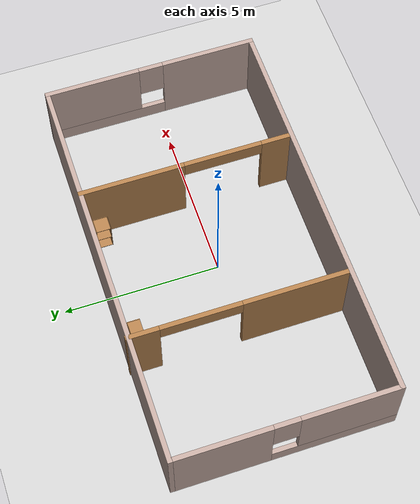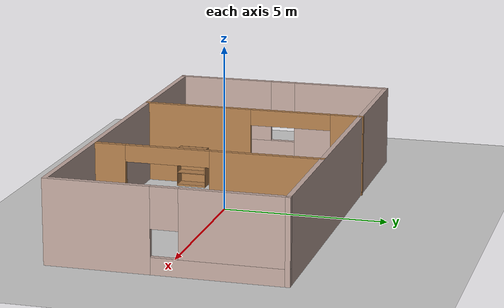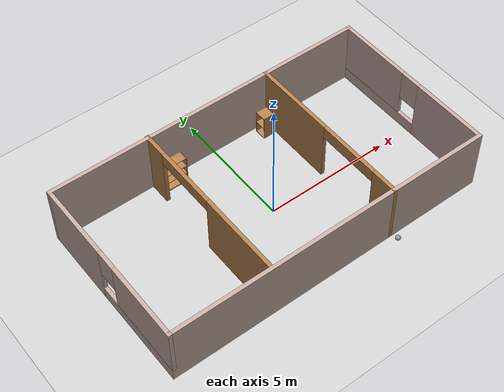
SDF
<sdf version="1.7">
 <world name="default">
  <light name="sun" type="directional">
   <pose>0 0 10 0 -0 0</pose>
   <diffuse>0.8 0.8 0.8 1</diffuse>
   <specular>0.2 0.2 0.2 1</specular>
   <attenuation>
    <range>1000</range>
    <constant>0.9</constant>
    <linear>0.01</linear>
    <quadratic>0.001</quadratic>
   </attenuation>
   <direction>-0.5 0.1 -0.9</direction>
   <spot><inner_angle>0</inner_angle><outer_angle>0</outer_angle><falloff>0</falloff></spot>
  </light>
  <model name="ground_plane">
   <static>1</static>
   <link name="link">
    <collision name="collision">
     <geometry><plane><normal>0 0 1</normal><size>100 100</size></plane></geometry>
     <surface>
      <contact><collide_bitmask>65535</collide_bitmask></contact>
      <friction><ode><mu>100</mu><mu2>50</mu2></ode></friction>
     </surface>
    </collision>
    <visual name="visual">
     <cast_shadows>0</cast_shadows>
     <geometry><plane><normal>0 0 1</normal><size>100 100</size></plane></geometry>
     <material>
      <script><uri>file://media/materials/scripts/gazebo.material</uri><name>Gazebo/Grey</name></script>
     </material>
    </visual>
   </link>
  </model>
  <gravity>0 0 -9.8</gravity>
  <magnetic_field>6e-06 2.3e-05 -4.2e-05</magnetic_field>
  <atmosphere type="adiabatic"/>
  <physics type="ode">
   <max_step_size>0.001</max_step_size>
   <real_time_factor>1</real_time_factor>
   <real_time_update_rate>1000</real_time_update_rate>
  </physics>
  <scene><ambient>0.4 0.4 0.4 1</ambient><background>0.7 0.7 0.7 1</background><shadows>1</shadows></scene>
  <spherical_coordinates>
   <surface_model>EARTH_WGS84</surface_model>
   <latitude_deg>0</latitude_deg>
   <longitude_deg>0</longitude_deg>
   <elevation>0</elevation>
   <heading_deg>0</heading_deg>
  </spherical_coordinates>
  <model name="go-chase">
   <pose>-0.062706 0.17599 0 0 -0 0</pose>
   <link name="Wall_0">
    <collision name="Wall_0_Collision">
     <geometry><box><size>13 0.15 2.5</size></box></geometry>
     <pose>0 0 1.25 0 -0 0</pose>
    </collision>
    <visual name="Wall_0_Visual">
     <pose>0 0 1.25 0 -0 0</pose>
     <geometry><box><size>13 0.15 2.5</size></box></geometry>
     <material>
      <script><uri>file://media/materials/scripts/gazebo.material</uri><name>Gazebo/Grey</name></script>
      <ambient>0.760784 0.662745 0.627451 1</ambient>
     </material>
     <meta><layer>0</layer></meta>
    </visual>
    <pose>-0 -3.44017 0 0 -0 0</pose>
   </link>
   <link name="Wall_14">
    <pose>2.53405 -0.01542 0 0 -0 -1.5708</pose>
    <visual name="Wall_14_Visual_0">
     <pose>-1.80446 0 1.25 0 -0 0</pose>
     <geometry><box><size>3.39109 0.15 2.5</size></box></geometry>
     <material>
      <script><uri>file://media/materials/scripts/gazebo.material</uri><name>Gazebo/Wood</name></script>
      <ambient>1 1 1 1</ambient>
     </material>
     <meta><layer>0</layer></meta>
    </visual>
    <collision name="Wall_14_Collision_0">
     <geometry><box><size>3.39109 0.15 2.5</size></box></geometry>
     <pose>-1.80446 0 1.25 0 -0 0</pose>
    </collision>
    <visual name="Wall_14_Visual_1">
     <pose>2.95888 0 1.25 0 -0 0</pose>
     <geometry><box><size>1.08225 0.15 2.5</size></box></geometry>
     <material>
      <script><uri>file://media/materials/scripts/gazebo.material</uri><name>Gazebo/Wood</name></script>
      <ambient>1 1 1 1</ambient>
     </material>
     <meta><layer>0</layer></meta>
    </visual>
    <collision name="Wall_14_Collision_1">
     <geometry><box><size>1.08225 0.15 2.5</size></box></geometry>
     <pose>2.95888 0 1.25 0 -0 0</pose>
    </collision>
    <visual name="Wall_14_Visual_2">
     <pose>1.15442 0 2.25 0 -0 0</pose>
     <geometry><box><size>2.52667 0.15 0.5</size></box></geometry>
     <material>
      <script><uri>file://media/materials/scripts/gazebo.material</uri><name>Gazebo/Wood</name></script>
      <ambient>1 1 1 1</ambient>
     </material>
     <meta><layer>0</layer></meta>
    </visual>
    <collision name="Wall_14_Collision_2">
     <geometry><box><size>2.52667 0.15 0.5</size></box></geometry>
     <pose>1.15442 0 2.25 0 -0 0</pose>
    </collision>
   </link>
   <link name="Wall_16">
    <pose>-2.53927 0.01542 0 0 -0 -1.5708</pose>
    <visual name="Wall_16_Visual_0">
     <pose>-2.9857 0 1.25 0 -0 0</pose>
     <geometry><box><size>1.02859 0.15 2.5</size></box></geometry>
     <material>
      <script><uri>file://media/materials/scripts/gazebo.material</uri><name>Gazebo/Wood</name></script>
      <ambient>1 1 1 1</ambient>
     </material>
     <meta><layer>0</layer></meta>
    </visual>
    <collision name="Wall_16_Collision_0">
     <geometry><box><size>1.02859 0.15 2.5</size></box></geometry>
     <pose>-2.9857 0 1.25 0 -0 0</pose>
    </collision>
    <visual name="Wall_16_Visual_1">
     <pose>1.7843 0 1.25 0 -0 0</pose>
     <geometry><box><size>3.4314 0.15 2.5</size></box></geometry>
     <material>
      <script><uri>file://media/materials/scripts/gazebo.material</uri><name>Gazebo/Wood</name></script>
      <ambient>1 1 1 1</ambient>
     </material>
     <meta><layer>0</layer></meta>
    </visual>
    <collision name="Wall_16_Collision_1">
     <geometry><box><size>3.4314 0.15 2.5</size></box></geometry>
     <pose>1.7843 0 1.25 0 -0 0</pose>
    </collision>
    <visual name="Wall_16_Visual_2">
     <pose>-1.20141 0 2.25 0 -0 0</pose>
     <geometry><box><size>2.54 0.15 0.5</size></box></geometry>
     <material>
      <script><uri>file://media/materials/scripts/gazebo.material</uri><name>Gazebo/Wood</name></script>
      <ambient>1 1 1 1</ambient>
     </material>
     <meta><layer>0</layer></meta>
    </visual>
    <collision name="Wall_16_Collision_2">
     <geometry><box><size>2.54 0.15 0.5</size></box></geometry>
     <pose>-1.20141 0 2.25 0 -0 0</pose>
    </collision>
   </link>
   <link name="Wall_3">
    <pose>6.425 -0.015166 0 0 -0 1.5708</pose>
    <visual name="Wall_3_Visual_0">
     <pose>-1.954 0 1.25 0 -0 0</pose>
     <geometry><box><size>3.09199 0.15 2.5</size></box></geometry>
     <material>
      <script><uri>file://media/materials/scripts/gazebo.material</uri><name>Gazebo/Grey</name></script>
      <ambient>0.760784 0.662745 0.627451 1</ambient>
     </material>
     <meta><layer>0</layer></meta>
    </visual>
    <collision name="Wall_3_Collision_0">
     <geometry><box><size>3.09199 0.15 2.5</size></box></geometry>
     <pose>-1.954 0 1.25 0 -0 0</pose>
    </collision>
    <visual name="Wall_3_Visual_1">
     <pose>1.546 0 0.25 0 -0 0</pose>
     <geometry><box><size>3.90801 0.15 0.5</size></box></geometry>
     <material>
      <script><uri>file://media/materials/scripts/gazebo.material</uri><name>Gazebo/Grey</name></script>
      <ambient>0.760784 0.662745 0.627451 1</ambient>
     </material>
     <meta><layer>0</layer></meta>
    </visual>
    <collision name="Wall_3_Collision_1">
     <geometry><box><size>3.90801 0.15 0.5</size></box></geometry>
     <pose>1.546 0 0.25 0 -0 0</pose>
    </collision>
    <visual name="Wall_3_Visual_2">
     <pose>1.946 0 1.5 0 -0 0</pose>
     <geometry><box><size>3.10801 0.15 2</size></box></geometry>
     <material>
      <script><uri>file://media/materials/scripts/gazebo.material</uri><name>Gazebo/Grey</name></script>
      <ambient>0.760784 0.662745 0.627451 1</ambient>
     </material>
     <meta><layer>0</layer></meta>
    </visual>
    <collision name="Wall_3_Collision_2">
     <geometry><box><size>3.10801 0.15 2</size></box></geometry>
     <pose>1.946 0 1.5 0 -0 0</pose>
    </collision>
    <visual name="Wall_3_Visual_3">
     <pose>-0.008009 0 1.9 0 -0 0</pose>
     <geometry><box><size>0.8 0.15 1.2</size></box></geometry>
     <material>
      <script><uri>file://media/materials/scripts/gazebo.material</uri><name>Gazebo/Grey</name></script>
      <ambient>0.760784 0.662745 0.627451 1</ambient>
     </material>
     <meta><layer>0</layer></meta>
    </visual>
    <collision name="Wall_3_Collision_3">
     <geometry><box><size>0.8 0.15 1.2</size></box></geometry>
     <pose>-0.008009 0 1.9 0 -0 0</pose>
    </collision>
   </link>
   <link name="Wall_4">
    <collision name="Wall_4_Collision">
     <geometry><box><size>13 0.15 2.5</size></box></geometry>
     <pose>0 0 1.25 0 -0 0</pose>
    </collision>
    <visual name="Wall_4_Visual">
     <pose>0 0 1.25 0 -0 0</pose>
     <geometry><box><size>13 0.15 2.5</size></box></geometry>
     <material>
      <script><uri>file://media/materials/scripts/gazebo.material</uri><name>Gazebo/Grey</name></script>
      <ambient>0.760784 0.662745 0.627451 1</ambient>
     </material>
     <meta><layer>0</layer></meta>
    </visual>
    <pose>-0 3.40983 0 0 -0 3.14159</pose>
   </link>
   <link name="Wall_5">
    <pose>-6.425 -0.015166 0 0 -0 -1.5708</pose>
    <visual name="Wall_5_Visual_0">
     <pose>-1.95266 0 1.25 0 -0 0</pose>
     <geometry><box><size>3.09468 0.15 2.5</size></box></geometry>
     <material>
      <script><uri>file://media/materials/scripts/gazebo.material</uri><name>Gazebo/Grey</name></script>
      <ambient>0.760784 0.662745 0.627451 1</ambient>
     </material>
     <meta><layer>0</layer></meta>
    </visual>
    <collision name="Wall_5_Collision_0">
     <geometry><box><size>3.09468 0.15 2.5</size></box></geometry>
     <pose>-1.95266 0 1.25 0 -0 0</pose>
    </collision>
    <visual name="Wall_5_Visual_1">
     <pose>1.54734 0 0.25 0 -0 0</pose>
     <geometry><box><size>3.90532 0.15 0.5</size></box></geometry>
     <material>
      <script><uri>file://media/materials/scripts/gazebo.material</uri><name>Gazebo/Grey</name></script>
      <ambient>0.760784 0.662745 0.627451 1</ambient>
     </material>
     <meta><layer>0</layer></meta>
    </visual>
    <collision name="Wall_5_Collision_1">
     <geometry><box><size>3.90532 0.15 0.5</size></box></geometry>
     <pose>1.54734 0 0.25 0 -0 0</pose>
    </collision>
    <visual name="Wall_5_Visual_2">
     <pose>1.94734 0 1.5 0 -0 0</pose>
     <geometry><box><size>3.10533 0.15 2</size></box></geometry>
     <material>
      <script><uri>file://media/materials/scripts/gazebo.material</uri><name>Gazebo/Grey</name></script>
      <ambient>0.760784 0.662745 0.627451 1</ambient>
     </material>
     <meta><layer>0</layer></meta>
    </visual>
    <collision name="Wall_5_Collision_2">
     <geometry><box><size>3.10533 0.15 2</size></box></geometry>
     <pose>1.94734 0 1.5 0 -0 0</pose>
    </collision>
    <visual name="Wall_5_Visual_3">
     <pose>-0.005325 0 1.9 0 -0 0</pose>
     <geometry><box><size>0.8 0.15 1.2</size></box></geometry>
     <material>
      <script><uri>file://media/materials/scripts/gazebo.material</uri><name>Gazebo/Grey</name></script>
      <ambient>0.760784 0.662745 0.627451 1</ambient>
     </material>
     <meta><layer>0</layer></meta>
    </visual>
    <collision name="Wall_5_Collision_3">
     <geometry><box><size>0.8 0.15 1.2</size></box></geometry>
     <pose>-0.005325 0 1.9 0 -0 0</pose>
    </collision>
   </link>
   <static>1</static>
  </model>
  <model name="bookshelf">
   <static>1</static>
   <link name="link">
    <inertial><mass>1</mass></inertial>
    <collision name="back">
     <pose>0 0.005 0.6 0 -0 0</pose>
     <geometry><box><size>0.9 0.01 1.2</size></box></geometry>
    </collision>
    <visual name="visual1">
     <pose>0 0.005 0.6 0 -0 0</pose>
     <geometry><box><size>0.9 0.01 1.2</size></box></geometry>
     <material>
      <script><uri>file://media/materials/scripts/gazebo.material</uri><name>Gazebo/Wood</name></script>
     </material>
    </visual>
    <collision name="left_side">
     <pose>0.45 -0.195 0.6 0 -0 0</pose>
     <geometry><box><size>0.02 0.4 1.2</size></box></geometry>
    </collision>
    <visual name="visual2">
     <pose>0.45 -0.195 0.6 0 -0 0</pose>
     <geometry><box><size>0.02 0.4 1.2</size></box></geometry>
     <material>
      <script><uri>file://media/materials/scripts/gazebo.material</uri><name>Gazebo/Wood</name></script>
     </material>
    </visual>
    <collision name="right_side">
     <pose>-0.45 -0.195 0.6 0 -0 0</pose>
     <geometry><box><size>0.02 0.4 1.2</size></box></geometry>
    </collision>
    <visual name="visual3">
     <pose>-0.45 -0.195 0.6 0 -0 0</pose>
     <geometry><box><size>0.02 0.4 1.2</size></box></geometry>
     <material>
      <script><uri>file://media/materials/scripts/gazebo.material</uri><name>Gazebo/Wood</name></script>
     </material>
    </visual>
    <collision name="bottom">
     <pose>0 -0.195 0.03 0 -0 0</pose>
     <geometry><box><size>0.88 0.4 0.06</size></box></geometry>
    </collision>
    <visual name="visual4">
     <pose>0 -0.195 0.03 0 -0 0</pose>
     <geometry><box><size>0.88 0.4 0.06</size></box></geometry>
     <material>
      <script><uri>file://media/materials/scripts/gazebo.material</uri><name>Gazebo/Wood</name></script>
     </material>
    </visual>
    <collision name="top">
     <pose>0 -0.195 1.19 0 -0 0</pose>
     <geometry><box><size>0.88 0.4 0.02</size></box></geometry>
    </collision>
    <visual name="visual5">
     <pose>0 -0.195 1.19 0 -0 0</pose>
     <geometry><box><size>0.88 0.4 0.02</size></box></geometry>
     <material>
      <script><uri>file://media/materials/scripts/gazebo.material</uri><name>Gazebo/Wood</name></script>
     </material>
    </visual>
    <collision name="low_shelf">
     <pose>0 -0.195 0.43 0 -0 0</pose>
     <geometry><box><size>0.88 0.4 0.02</size></box></geometry>
    </collision>
    <visual name="visual6">
     <pose>0 -0.195 0.43 0 -0 0</pose>
     <geometry><box><size>0.88 0.4 0.02</size></box></geometry>
     <material>
      <script><uri>file://media/materials/scripts/gazebo.material</uri><name>Gazebo/Wood</name></script>
     </material>
    </visual>
    <collision name="high_shelf">
     <pose>0 -0.195 0.8 0 -0 0</pose>
     <geometry><box><size>0.88 0.4 0.02</size></box></geometry>
    </collision>
    <visual name="visual7">
     <pose>0 -0.195 0.8 0 -0 0</pose>
     <geometry><box><size>0.88 0.4 0.02</size></box></geometry>
     <material>
      <script><uri>file://media/materials/scripts/gazebo.material</uri><name>Gazebo/Wood</name></script>
     </material>
    </visual>
   </link>
   <pose>-1.97681 3.38182 0 0 -0 0</pose>
  </model>
  <model name="bookshelf_0">
   <static>1</static>
   <link name="link">
    <inertial><mass>1</mass></inertial>
    <collision name="back">
     <pose>0 0.005 0.6 0 -0 0</pose>
     <geometry><box><size>0.9 0.01 1.2</size></box></geometry>
    </collision>
    <visual name="visual1">
     <pose>0 0.005 0.6 0 -0 0</pose>
     <geometry><box><size>0.9 0.01 1.2</size></box></geometry>
     <material>
      <script><uri>file://media/materials/scripts/gazebo.material</uri><name>Gazebo/Wood</name></script>
     </material>
    </visual>
    <collision name="left_side">
     <pose>0.45 -0.195 0.6 0 -0 0</pose>
     <geometry><box><size>0.02 0.4 1.2</size></box></geometry>
    </collision>
    <visual name="visual2">
     <pose>0.45 -0.195 0.6 0 -0 0</pose>
     <geometry><box><size>0.02 0.4 1.2</size></box></geometry>
     <material>
      <script><uri>file://media/materials/scripts/gazebo.material</uri><name>Gazebo/Wood</name></script>
     </material>
    </visual>
    <collision name="right_side">
     <pose>-0.45 -0.195 0.6 0 -0 0</pose>
     <geometry><box><size>0.02 0.4 1.2</size></box></geometry>
    </collision>
    <visual name="visual3">
     <pose>-0.45 -0.195 0.6 0 -0 0</pose>
     <geometry><box><size>0.02 0.4 1.2</size></box></geometry>
     <material>
      <script><uri>file://media/materials/scripts/gazebo.material</uri><name>Gazebo/Wood</name></script>
     </material>
    </visual>
    <collision name="bottom">
     <pose>0 -0.195 0.03 0 -0 0</pose>
     <geometry><box><size>0.88 0.4 0.06</size></box></geometry>
    </collision>
    <visual name="visual4">
     <pose>0 -0.195 0.03 0 -0 0</pose>
     <geometry><box><size>0.88 0.4 0.06</size></box></geometry>
     <material>
      <script><uri>file://media/materials/scripts/gazebo.material</uri><name>Gazebo/Wood</name></script>
     </material>
    </visual>
    <collision name="top">
     <pose>0 -0.195 1.19 0 -0 0</pose>
     <geometry><box><size>0.88 0.4 0.02</size></box></geometry>
    </collision>
    <visual name="visual5">
     <pose>0 -0.195 1.19 0 -0 0</pose>
     <geometry><box><size>0.88 0.4 0.02</size></box></geometry>
     <material>
      <script><uri>file://media/materials/scripts/gazebo.material</uri><name>Gazebo/Wood</name></script>
     </material>
    </visual>
    <collision name="low_shelf">
     <pose>0 -0.195 0.43 0 -0 0</pose>
     <geometry><box><size>0.88 0.4 0.02</size></box></geometry>
    </collision>
    <visual name="visual6">
     <pose>0 -0.195 0.43 0 -0 0</pose>
     <geometry><box><size>0.88 0.4 0.02</size></box></geometry>
     <material>
      <script><uri>file://media/materials/scripts/gazebo.material</uri><name>Gazebo/Wood</name></script>
     </material>
    </visual>
    <collision name="high_shelf">
     <pose>0 -0.195 0.8 0 -0 0</pose>
     <geometry><box><size>0.88 0.4 0.02</size></box></geometry>
    </collision>
    <visual name="visual7">
     <pose>0 -0.195 0.8 0 -0 0</pose>
     <geometry><box><size>0.88 0.4 0.02</size></box></geometry>
     <material>
      <script><uri>file://media/materials/scripts/gazebo.material</uri><name>Gazebo/Wood</name></script>
     </material>
    </visual>
   </link>
   <pose>-2.43654 -1.67884 0 0 -0 1.56521</pose>
  </model>
  <model name="cabinet">
   <static>1</static>
   <link name="cabinet_bottom_plate">
    <inertial>
     <pose>0 0 -1 0 -0 0</pose>
     <inertia><ixx>2.05</ixx><ixy>0</ixy><ixz>0</ixz><iyy>2.05</iyy><iyz>0</iyz><izz>2.05</izz></inertia>
     <mass>25</mass>
    </inertial>
    <collision name="cabinet_bottom_plate_geom">
     <pose>0 0 0.01 0 -0 0</pose>
     <geometry><box><size>0.45 0.45 0.02</size></box></geometry>
    </collision>
    <visual name="cabinet_bottom_plate_geom_visual">
     <pose>0 0 0.01 0 -0 0</pose>
     <geometry><box><size>0.45 0.45 0.02</size></box></geometry>
     <material>
      <script><uri>file://media/materials/scripts/gazebo.material</uri><name>Gazebo/Wood</name></script>
     </material>
    </visual>
    <collision name="cabinet_bottom_plate_geom_cabinet_back_plate">
     <pose>0.235 0 0.51 0 -0 0</pose>
     <geometry><box><size>0.02 0.45 1.02</size></box></geometry>
    </collision>
    <visual name="cabinet_bottom_plate_geom_cabinet_back_plate_visual">
     <pose>0.235 0 0.51 0 -0 0</pose>
     <geometry><box><size>0.02 0.45 1.02</size></box></geometry>
     <material>
      <script><uri>file://media/materials/scripts/gazebo.material</uri><name>Gazebo/Wood</name></script>
     </material>
    </visual>
    <collision name="cabinet_bottom_plate_geom_cabinet_left_plate">
     <pose>0 0.235 0.51 0 -0 0</pose>
     <geometry><box><size>0.45 0.02 1.02</size></box></geometry>
    </collision>
    <visual name="cabinet_bottom_plate_geom_cabinet_left_plate_visual">
     <pose>0 0.235 0.51 0 -0 0</pose>
     <geometry><box><size>0.45 0.02 1.02</size></box></geometry>
     <material>
      <script><uri>file://media/materials/scripts/gazebo.material</uri><name>Gazebo/Wood</name></script>
     </material>
    </visual>
    <collision name="cabinet_bottom_plate_geom_cabinet_middle_plate">
     <pose>0 0 0.51 0 -0 0</pose>
     <geometry><box><size>0.45 0.45 0.02</size></box></geometry>
    </collision>
    <visual name="cabinet_bottom_plate_geom_cabinet_middle_plate_visual">
     <pose>0 0 0.51 0 -0 0</pose>
     <geometry><box><size>0.45 0.45 0.02</size></box></geometry>
     <material>
      <script><uri>file://media/materials/scripts/gazebo.material</uri><name>Gazebo/Wood</name></script>
     </material>
    </visual>
    <collision name="cabinet_bottom_plate_geom_cabinet_right_plate">
     <pose>0 -0.235 0.51 0 -0 0</pose>
     <geometry><box><size>0.45 0.02 1.02</size></box></geometry>
    </collision>
    <visual name="cabinet_bottom_plate_geom_cabinet_right_plate_visual">
     <pose>0 -0.235 0.51 0 -0 0</pose>
     <geometry><box><size>0.45 0.02 1.02</size></box></geometry>
     <material>
      <script><uri>file://media/materials/scripts/gazebo.material</uri><name>Gazebo/Wood</name></script>
     </material>
    </visual>
    <collision name="cabinet_bottom_plate_geom_cabinet_top_plate">
     <pose>0 0 1.01 0 -0 0</pose>
     <geometry><box><size>0.45 0.45 0.02</size></box></geometry>
    </collision>
    <visual name="cabinet_bottom_plate_geom_cabinet_top_plate_visual">
     <pose>0 0 1.01 0 -0 0</pose>
     <geometry><box><size>0.45 0.45 0.02</size></box></geometry>
     <material>
      <script><uri>file://media/materials/scripts/gazebo.material</uri><name>Gazebo/Wood</name></script>
     </material>
    </visual>
   </link>
   <pose>2.07121 3.14256 0 0 -0 0</pose>
  </model>
  <model name="my_ball">
   <link name="link_0">
    <inertial>
     <mass>1</mass>
     <inertia><ixx>0.1</ixx><ixy>0</ixy><ixz>0</ixz><iyy>0.1</iyy><iyz>0</iyz><izz>0.1</izz></inertia>
    </inertial>
    <visual name="visual">
     <geometry><sphere><radius>0.1</radius></sphere></geometry>
     <material>
      <lighting>1</lighting>
      <script><uri>file://media/materials/scripts/gazebo.material</uri><name>Gazebo/Grey</name></script>
      <shader type="pixel"><normal_map>__default__</normal_map></shader>
      <ambient>1 1 1 1</ambient>
      <diffuse>1 1 1 1</diffuse>
      <specular>1 1 1 1</specular>
      <emissive>1 1 1 1</emissive>
     </material>
    </visual>
    <collision name="collision">
     <geometry><sphere><radius>0.1</radius></sphere></geometry>
     <surface>
      <friction>
       <ode><mu>1</mu><mu2>1</mu2><fdir1>0 0 0</fdir1><slip1>0</slip1><slip2>0</slip2></ode>
       <torsional>
        <coefficient>1</coefficient>
        <patch_radius>0</patch_radius>
        <surface_radius>0</surface_radius>
        <use_patch_radius>1</use_patch_radius>
        <ode><slip>0</slip></ode>
       </torsional>
      </friction>
      <bounce><restitution_coefficient>0</restitution_coefficient><threshold>1e+06</threshold></bounce>
      <contact>
       <collide_without_contact>0</collide_without_contact>
       <collide_without_contact_bitmask>1</collide_without_contact_bitmask>
       <collide_bitmask>1</collide_bitmask>
       <ode>
        <soft_cfm>0</soft_cfm>
        <soft_erp>0.2</soft_erp>
        <kp>1e+13</kp>
        <kd>1</kd>
        <max_vel>0.01</max_vel>
        <min_depth>0</min_depth>
       </ode>
       <bullet>
        <split_impulse>1</split_impulse>
        <split_impulse_penetration_threshold>-0.01</split_impulse_penetration_threshold>
        <soft_cfm>0</soft_cfm>
        <soft_erp>0.2</soft_erp>
        <kp>1e+13</kp>
        <kd>1</kd>
       </bullet>
      </contact>
     </surface>
    </collision>
   </link>
   <static>0</static>
   <pose>2.61677 -3.59256 0.1 0 -0 0</pose>
  </model>
 </world>
</sdf>
